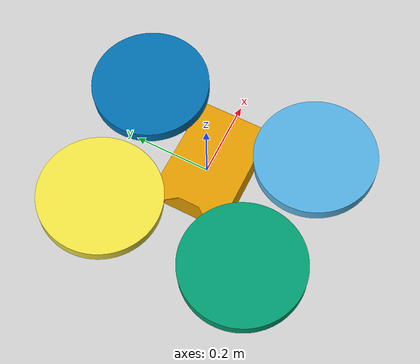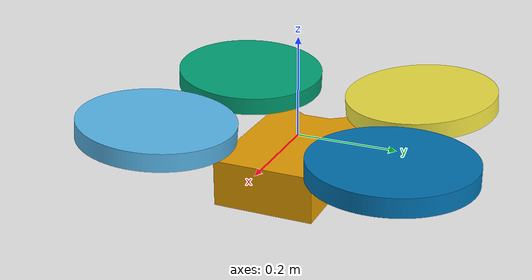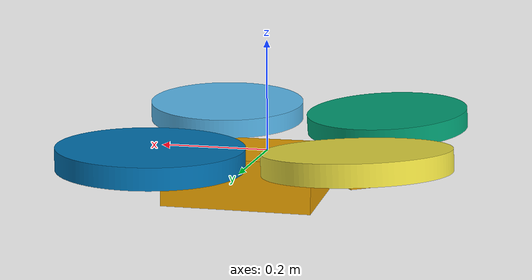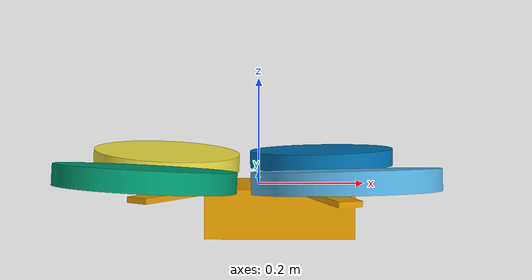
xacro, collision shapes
<?xml version="1.0" ?>
<robot name="shafter" xmlns:xacro='http://ros.org/wiki/xacro'>
  <xacro:arg name="name" default="shafter"/>
  <xacro:property name="robot_namespace" value="$(arg name)"/>
  <link name="${robot_namespace}/base_link">
    <inertial>
      <mass value="3.06"/>
      <origin rpy="0 0 0" xyz="0 0 0"/>
      <inertia ixx="0.028276852" ixy="0" ixz="0" iyy="0.023963104" iyz="0" izz="0.037878321"/>
    </inertial>
    <collision name="base_link_collision">
      <origin rpy="0 0 0" xyz="0 0 0"/>
      <geometry>
        <mesh filename="package://costar_shafter_sensor_config_1/meshes/sh_base_link_geometry_v2.dae" scale="1 1 1"/>
      </geometry>
    </collision>
    <visual name="base_link_visual">
      <origin rpy="0 0 0" xyz="0 0 0"/>
      <geometry>
        <mesh filename="package://costar_shafter_sensor_config_1/meshes/shafter_body_V2.dae" scale="1 1 1"/>
      </geometry>
    </visual>
    <visual name="realsense_front_visual">
      <origin rpy="-1.57079 0 -1.57079" xyz="0.15 0 -0.003"/>
      <geometry>
        <mesh filename="package://costar_shafter_sensor_config_1/meshes/zr300.dae" scale="1.0 1.0 1.0"/>
      </geometry>
    </visual>
    <visual name="laser_visual">
      <origin rpy="0 0 0" xyz="0 0 0.12"/>
      <geometry>
        <cylinder length="0.1" radius="0.03"/>
      </geometry>
    </visual>
  </link>

  <sensor name='imu_sensor' update_rate='200'>
    <parent link='${robot_namespace}/base_link'/>
    <origin xyz='0 0 0' rpy='0 -0 0'/>
  </sensor>

  <sensor name='magnetometer' update_rate='20'>
    <parent link='${robot_namespace}/base_link'/>
    <origin xyz='0 0 0' rpy='0 -0 0'/>
  </sensor>

  <sensor name='realsense_front' update_rate='20'>
    <parent link='${robot_namespace}/base_link'/>
    <origin xyz='0.17 0.0 -0.003' rpy='0 -0 0'/>
    <camera>
      <image width='640' height='480' format='R8G8B8' hfov='1.18682' near='0.01' far='300' />
    </camera>
  </sensor>

  <sensor name='front_laser' update_rate='10'>
    <parent link='${robot_namespace}/base_link'/>
    <origin xyz='0 0 0.12' rpy='0 -0 0'/>
  </sensor>

  <link name="${robot_namespace}/ShArm_1_link">
    <inertial>
      <mass value="0.015"/>
      <origin rpy="0 0 0" xyz="0 0 0"/>
      <inertia ixx="0.000012634" ixy="0" ixz="0" iyy="0.000102634" iyz="0" izz="0.000091336"/>
    </inertial>
    <collision name="ShArm_1_link_collision">
      <origin rpy="0 0 0" xyz="0 0 0"/>
      <geometry>
        <mesh filename="package://costar_shafter_sensor_config_1/meshes/sh_arm_link_geometry.dae" scale="1 1 1"/>
      </geometry>
    </collision>
    <visual name="ShArm_1_link_visual">
      <origin rpy="0 0 0" xyz="0 0 0"/>
      <geometry>
        <mesh filename="package://costar_shafter_sensor_config_1/meshes/shafter_rotor_ccw_V2.dae" scale="1 1 1"/>
      </geometry>
    </visual>
  </link>
  <link name="${robot_namespace}/ShArm_2_link">
    <inertial>
      <mass value="0.015"/>
      <origin rpy="0 0 0" xyz="0 0 0"/>
      <inertia ixx="0.000012634" ixy="0" ixz="0" iyy="0.000102634" iyz="0" izz="0.000091336"/>
    </inertial>
    <collision name="ShArm_2_link_collision">
      <origin rpy="0 0 0" xyz="0 0 0"/>
      <geometry>
        <mesh filename="package://costar_shafter_sensor_config_1/meshes/sh_arm_link_geometry.dae" scale="1 1 1"/>
      </geometry>
    </collision>
    <visual name="ShArm_2_link_visual">
      <origin rpy="0 0 0" xyz="0 0 0"/>
      <geometry>
        <mesh filename="package://costar_shafter_sensor_config_1/meshes/shafter_rotor_cw_V2.dae" scale="1 1 1"/>
      </geometry>
    </visual>
  </link>
  <link name="${robot_namespace}/ShArm_3_link">
    <inertial>
      <mass value="0.015"/>
      <origin rpy="0 0 0" xyz="0 0 0"/>
      <inertia ixx="0.000012634" ixy="0" ixz="0" iyy="0.000102634" iyz="0" izz="0.000091336"/>
    </inertial>
    <collision name="ShArm_3_link_collision">
      <origin rpy="0 0 0" xyz="0 0 0"/>
      <geometry>
        <mesh filename="package://costar_shafter_sensor_config_1/meshes/sh_arm_link_geometry.dae" scale="1 1 1"/>
      </geometry>
    </collision>
    <visual name="ShArm_3_link_visual">
      <origin rpy="0 0 0" xyz="0 0 0"/>
      <geometry>
        <mesh filename="package://costar_shafter_sensor_config_1/meshes/shafter_rotor_ccw_V2.dae" scale="1 1 1"/>
      </geometry>
    </visual>
  </link>
  <link name="${robot_namespace}/ShArm_4_link">
    <inertial>
      <mass value="0.015"/>
      <origin rpy="0 0 0" xyz="0 0 0"/>
      <inertia ixx="0.000012634" ixy="0" ixz="0" iyy="0.000102634" iyz="0" izz="0.000091336"/>
    </inertial>
    <collision name="ShArm_4_link_collision">
      <origin rpy="0 0 0" xyz="0 0 0"/>
      <geometry>
        <mesh filename="package://costar_shafter_sensor_config_1/meshes/sh_arm_link_geometry.dae" scale="1 1 1"/>
      </geometry>
    </collision>
    <visual name="ShArm_4_link_visual">
      <origin rpy="0 0 0" xyz="0 0 0"/>
      <geometry>
        <mesh filename="package://costar_shafter_sensor_config_1/meshes/shafter_rotor_cw_V2.dae" scale="1 1 1"/>
      </geometry>
    </visual>
  </link>
 <joint name="ShBody_1_ShArm_1_joint" type="revolute">
    <parent link="${robot_namespace}/base_link"/>
    <child link="${robot_namespace}/ShArm_1_link"/>
    <origin rpy="-0.08377 -0.02443 0" xyz="0.13961 -0.23629 0.01291"/>
    <axis xyz="0.02443 -0.08365  0.99619"/>
    <limit effort="0.0" lower="-1e+16" upper="1e+16" velocity="0.0"/>
  </joint>
  <joint name="ShBody_1_ShArm_2_joint" type="revolute">
    <parent link="${robot_namespace}/base_link"/>
    <child link="${robot_namespace}/ShArm_2_link"/>
    <origin rpy="-0.06754 0.05532 0" xyz="-0.19482 -0.19335 0.01291"/>
    <axis xyz="-0.05529 -0.06738 0.99619"/>
    <limit effort="0.0" lower="-1e+16" upper="1e+16" velocity="0.0"/>
  </joint>
  <joint name="ShBody_1_ShArm_3_joint" type="revolute">
    <parent link="${robot_namespace}/base_link"/>
    <child link="${robot_namespace}/ShArm_3_link"/>
    <origin rpy="0.06754 0.05532 0" xyz="-0.19482 0.19335 0.01291"/>
    <axis xyz="-0.05529 0.06738 0.99619"/>
    <limit effort="0.0" lower="-1e+16" upper="1e+16" velocity="0.0"/>
  </joint>
  <joint name="ShBody_1_ShArm_4_joint" type="revolute">
    <parent link="${robot_namespace}/base_link"/>
    <child link="${robot_namespace}/ShArm_4_link"/>
    <origin rpy="0 -0.02443 0" xyz="0.13961 0.23629 0.01291"/>
    <axis xyz="0.02443 0 0.9997"/>
    <limit effort="0.0" lower="-1e+16" upper="1e+16" velocity="0.0"/>
  </joint>

</robot>
